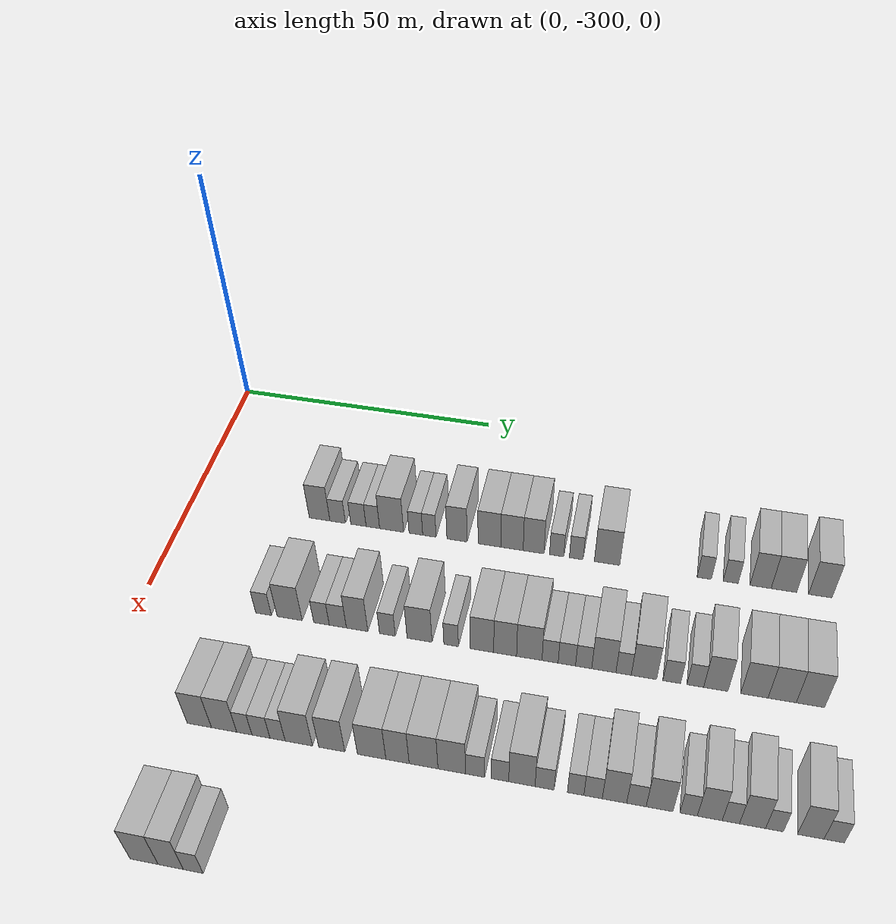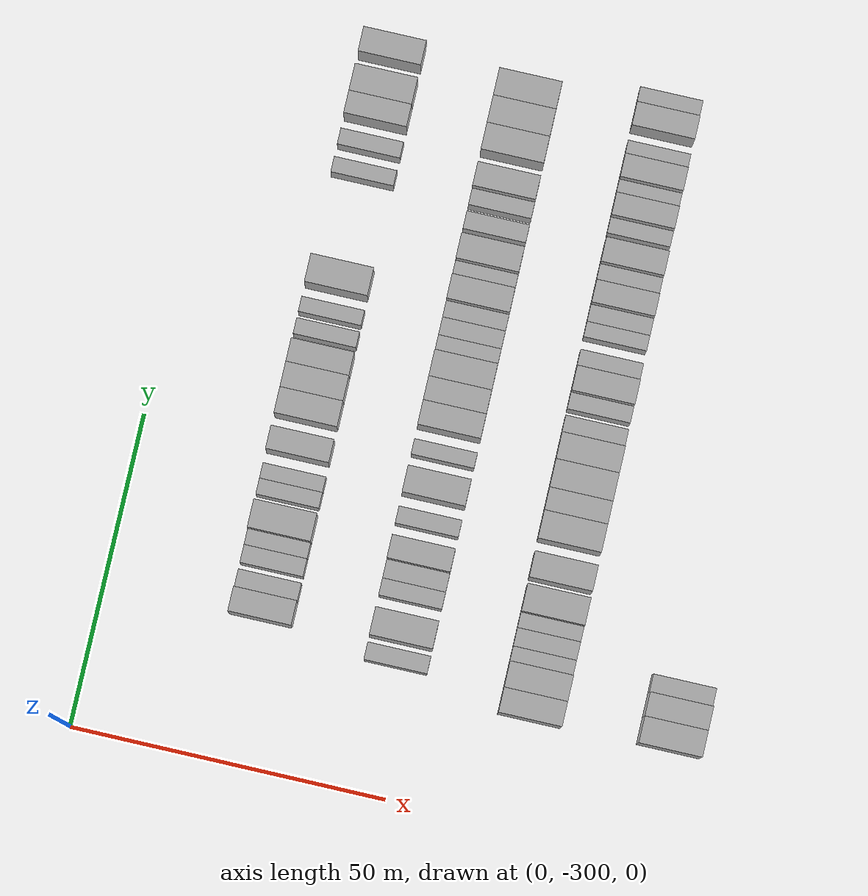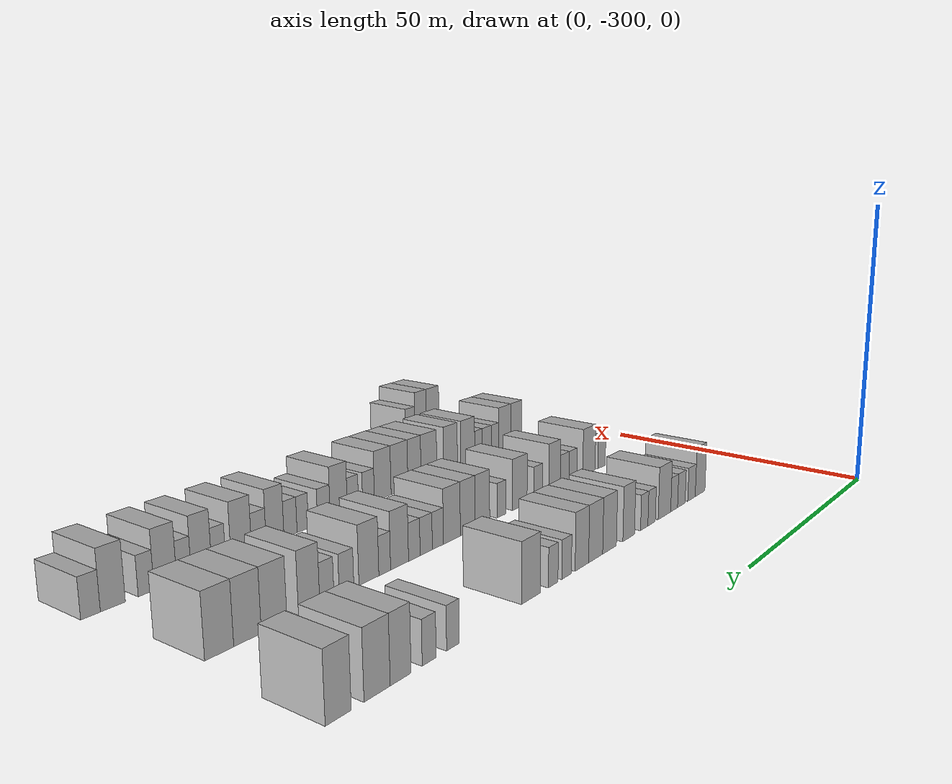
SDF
<sdf version="1.6">
 <world name="default">
  <model name="building_27">
   <static>1</static>
   <pose>25.0000 -275.4623 0 0.000000 0.000000 0.000000</pose>
   <link name="link">
    <pose>0 0 4.50 0 0 0</pose>
    <collision name="collision"><geometry><box><size>10.0000 3.9105 9.0000</size></box></geometry></collision>
    <visual name="visual">
     <cast_shadows>0</cast_shadows>
     <geometry><box><size>10.0000 3.9105 9.0000</size></box></geometry>
     <material>
      <script>
       <uri>model://HANNAS_wall/materials/scripts</uri>
       <uri>model://HANNAS_wall/materials/textures</uri>
       <name>vrc/HANNAS_wall</name>
      </script>
     </material>
    </visual>
   </link>
  </model>
  <model name="building_28">
   <static>1</static>
   <pose>25.0000 -272.0385 0 0.000000 0.000000 0.000000</pose>
   <link name="link">
    <pose>0 0 3.00 0 0 0</pose>
    <collision name="collision"><geometry><box><size>10.0000 2.9372 6.0000</size></box></geometry></collision>
    <visual name="visual">
     <cast_shadows>0</cast_shadows>
     <geometry><box><size>10.0000 2.9372 6.0000</size></box></geometry>
     <material>
      <script>
       <uri>model://HANNAS_wall/materials/scripts</uri>
       <uri>model://HANNAS_wall/materials/textures</uri>
       <name>vrc/HANNAS_wall</name>
      </script>
     </material>
    </visual>
   </link>
  </model>
  <model name="building_29">
   <static>1</static>
   <pose>25.0000 -268.1375 0 0.000000 0.000000 0.000000</pose>
   <link name="link">
    <pose>0 0 3.00 0 0 0</pose>
    <collision name="collision"><geometry><box><size>10.0000 2.8648 6.0000</size></box></geometry></collision>
    <visual name="visual">
     <cast_shadows>0</cast_shadows>
     <geometry><box><size>10.0000 2.8648 6.0000</size></box></geometry>
     <material>
      <script>
       <uri>model://HANNAS_wall/materials/scripts</uri>
       <uri>model://HANNAS_wall/materials/textures</uri>
       <name>vrc/HANNAS_wall</name>
      </script>
     </material>
    </visual>
   </link>
  </model>
  <model name="building_30">
   <static>1</static>
   <pose>25.0000 -265.4412 0 0.000000 0.000000 0.000000</pose>
   <link name="link">
    <pose>0 0 3.00 0 0 0</pose>
    <collision name="collision"><geometry><box><size>10.0000 2.5277 6.0000</size></box></geometry></collision>
    <visual name="visual">
     <cast_shadows>0</cast_shadows>
     <geometry><box><size>10.0000 2.5277 6.0000</size></box></geometry>
     <material>
      <script>
       <uri>model://HANNAS_wall/materials/scripts</uri>
       <uri>model://HANNAS_wall/materials/textures</uri>
       <name>vrc/HANNAS_wall</name>
      </script>
     </material>
    </visual>
   </link>
  </model>
  <model name="building_31">
   <static>1</static>
   <pose>25.0000 -261.9385 0 0.000000 0.000000 0.000000</pose>
   <link name="link">
    <pose>0 0 4.50 0 0 0</pose>
    <collision name="collision"><geometry><box><size>10.0000 4.4777 9.0000</size></box></geometry></collision>
    <visual name="visual">
     <cast_shadows>0</cast_shadows>
     <geometry><box><size>10.0000 4.4777 9.0000</size></box></geometry>
     <material>
      <script>
       <uri>model://HANNAS_wall/materials/scripts</uri>
       <uri>model://HANNAS_wall/materials/textures</uri>
       <name>vrc/HANNAS_wall</name>
      </script>
     </material>
    </visual>
   </link>
  </model>
  <model name="building_32">
   <static>1</static>
   <pose>25.0000 -257.4341 0 0.000000 0.000000 0.000000</pose>
   <link name="link">
    <pose>0 0 3.00 0 0 0</pose>
    <collision name="collision"><geometry><box><size>10.0000 2.5312 6.0000</size></box></geometry></collision>
    <visual name="visual">
     <cast_shadows>0</cast_shadows>
     <geometry><box><size>10.0000 2.5312 6.0000</size></box></geometry>
     <material>
      <script>
       <uri>model://HANNAS_wall/materials/scripts</uri>
       <uri>model://HANNAS_wall/materials/textures</uri>
       <name>vrc/HANNAS_wall</name>
      </script>
     </material>
    </visual>
   </link>
  </model>
  <model name="building_33">
   <static>1</static>
   <pose>25.0000 -254.9385 0 0.000000 0.000000 0.000000</pose>
   <link name="link">
    <pose>0 0 3.00 0 0 0</pose>
    <collision name="collision"><geometry><box><size>10.0000 2.4600 6.0000</size></box></geometry></collision>
    <visual name="visual">
     <cast_shadows>0</cast_shadows>
     <geometry><box><size>10.0000 2.4600 6.0000</size></box></geometry>
     <material>
      <script>
       <uri>model://HANNAS_wall/materials/scripts</uri>
       <uri>model://HANNAS_wall/materials/textures</uri>
       <name>vrc/HANNAS_wall</name>
      </script>
     </material>
    </visual>
   </link>
  </model>
  <model name="building_34">
   <static>1</static>
   <pose>25.0000 -249.8592 0 0.000000 0.000000 0.000000</pose>
   <link name="link">
    <pose>0 0 4.50 0 0 0</pose>
    <collision name="collision"><geometry><box><size>10.0000 3.6985 9.0000</size></box></geometry></collision>
    <visual name="visual">
     <cast_shadows>0</cast_shadows>
     <geometry><box><size>10.0000 3.6985 9.0000</size></box></geometry>
     <material>
      <script>
       <uri>model://HANNAS_wall/materials/scripts</uri>
       <uri>model://HANNAS_wall/materials/textures</uri>
       <name>vrc/HANNAS_wall</name>
      </script>
     </material>
    </visual>
   </link>
  </model>
  <model name="building_35">
   <static>1</static>
   <pose>25.0000 -243.9515 0 0.000000 0.000000 0.000000</pose>
   <link name="link">
    <pose>0 0 4.50 0 0 0</pose>
    <collision name="collision"><geometry><box><size>10.0000 4.1169 9.0000</size></box></geometry></collision>
    <visual name="visual">
     <cast_shadows>0</cast_shadows>
     <geometry><box><size>10.0000 4.1169 9.0000</size></box></geometry>
     <material>
      <script>
       <uri>model://HANNAS_wall/materials/scripts</uri>
       <uri>model://HANNAS_wall/materials/textures</uri>
       <name>vrc/HANNAS_wall</name>
      </script>
     </material>
    </visual>
   </link>
  </model>
  <model name="building_36">
   <static>1</static>
   <pose>25.0000 -239.8712 0 0.000000 0.000000 0.000000</pose>
   <link name="link">
    <pose>0 0 4.50 0 0 0</pose>
    <collision name="collision"><geometry><box><size>10.0000 4.0436 9.0000</size></box></geometry></collision>
    <visual name="visual">
     <cast_shadows>0</cast_shadows>
     <geometry><box><size>10.0000 4.0436 9.0000</size></box></geometry>
     <material>
      <script>
       <uri>model://HANNAS_wall/materials/scripts</uri>
       <uri>model://HANNAS_wall/materials/textures</uri>
       <name>vrc/HANNAS_wall</name>
      </script>
     </material>
    </visual>
   </link>
  </model>
  <model name="building_37">
   <static>1</static>
   <pose>25.0000 -235.9792 0 0.000000 0.000000 0.000000</pose>
   <link name="link">
    <pose>0 0 4.50 0 0 0</pose>
    <collision name="collision"><geometry><box><size>10.0000 3.7403 9.0000</size></box></geometry></collision>
    <visual name="visual">
     <cast_shadows>0</cast_shadows>
     <geometry><box><size>10.0000 3.7403 9.0000</size></box></geometry>
     <material>
      <script>
       <uri>model://HANNAS_wall/materials/scripts</uri>
       <uri>model://HANNAS_wall/materials/textures</uri>
       <name>vrc/HANNAS_wall</name>
      </script>
     </material>
    </visual>
   </link>
  </model>
  <model name="building_38">
   <static>1</static>
   <pose>25.0000 -231.8382 0 0.000000 0.000000 0.000000</pose>
   <link name="link">
    <pose>0 0 3.00 0 0 0</pose>
    <collision name="collision"><geometry><box><size>10.0000 2.5418 6.0000</size></box></geometry></collision>
    <visual name="visual">
     <cast_shadows>0</cast_shadows>
     <geometry><box><size>10.0000 2.5418 6.0000</size></box></geometry>
     <material>
      <script>
       <uri>model://HANNAS_wall/materials/scripts</uri>
       <uri>model://HANNAS_wall/materials/textures</uri>
       <name>vrc/HANNAS_wall</name>
      </script>
     </material>
    </visual>
   </link>
  </model>
  <model name="building_39">
   <static>1</static>
   <pose>25.0000 -228.3527 0 0.000000 0.000000 0.000000</pose>
   <link name="link">
    <pose>0 0 3.00 0 0 0</pose>
    <collision name="collision"><geometry><box><size>10.0000 2.4292 6.0000</size></box></geometry></collision>
    <visual name="visual">
     <cast_shadows>0</cast_shadows>
     <geometry><box><size>10.0000 2.4292 6.0000</size></box></geometry>
     <material>
      <script>
       <uri>model://HANNAS_wall/materials/scripts</uri>
       <uri>model://HANNAS_wall/materials/textures</uri>
       <name>vrc/HANNAS_wall</name>
      </script>
     </material>
    </visual>
   </link>
  </model>
  <model name="building_40">
   <static>1</static>
   <pose>25.0000 -222.8898 0 0.000000 0.000000 0.000000</pose>
   <link name="link">
    <pose>0 0 4.50 0 0 0</pose>
    <collision name="collision"><geometry><box><size>10.0000 4.4965 9.0000</size></box></geometry></collision>
    <visual name="visual">
     <cast_shadows>0</cast_shadows>
     <geometry><box><size>10.0000 4.4965 9.0000</size></box></geometry>
     <material>
      <script>
       <uri>model://HANNAS_wall/materials/scripts</uri>
       <uri>model://HANNAS_wall/materials/textures</uri>
       <name>vrc/HANNAS_wall</name>
      </script>
     </material>
    </visual>
   </link>
  </model>
  <model name="building_41">
   <static>1</static>
   <pose>25.0000 -205.9255 0 0.000000 0.000000 0.000000</pose>
   <link name="link">
    <pose>0 0 3.00 0 0 0</pose>
    <collision name="collision"><geometry><box><size>10.0000 2.4774 6.0000</size></box></geometry></collision>
    <visual name="visual">
     <cast_shadows>0</cast_shadows>
     <geometry><box><size>10.0000 2.4774 6.0000</size></box></geometry>
     <material>
      <script>
       <uri>model://HANNAS_wall/materials/scripts</uri>
       <uri>model://HANNAS_wall/materials/textures</uri>
       <name>vrc/HANNAS_wall</name>
      </script>
     </material>
    </visual>
   </link>
  </model>
  <model name="building_42">
   <static>1</static>
   <pose>25.0000 -201.3956 0 0.000000 0.000000 0.000000</pose>
   <link name="link">
    <pose>0 0 3.00 0 0 0</pose>
    <collision name="collision"><geometry><box><size>10.0000 2.5824 6.0000</size></box></geometry></collision>
    <visual name="visual">
     <cast_shadows>0</cast_shadows>
     <geometry><box><size>10.0000 2.5824 6.0000</size></box></geometry>
     <material>
      <script>
       <uri>model://HANNAS_wall/materials/scripts</uri>
       <uri>model://HANNAS_wall/materials/textures</uri>
       <name>vrc/HANNAS_wall</name>
      </script>
     </material>
    </visual>
   </link>
  </model>
  <model name="building_43">
   <static>1</static>
   <pose>25.0000 -196.2960 0 0.000000 0.000000 0.000000</pose>
   <link name="link">
    <pose>0 0 4.50 0 0 0</pose>
    <collision name="collision"><geometry><box><size>10.0000 3.6167 9.0000</size></box></geometry></collision>
    <visual name="visual">
     <cast_shadows>0</cast_shadows>
     <geometry><box><size>10.0000 3.6167 9.0000</size></box></geometry>
     <material>
      <script>
       <uri>model://HANNAS_wall/materials/scripts</uri>
       <uri>model://HANNAS_wall/materials/textures</uri>
       <name>vrc/HANNAS_wall</name>
      </script>
     </material>
    </visual>
   </link>
  </model>
  <model name="building_44">
   <static>1</static>
   <pose>25.0000 -192.3306 0 0.000000 0.000000 0.000000</pose>
   <link name="link">
    <pose>0 0 4.50 0 0 0</pose>
    <collision name="collision"><geometry><box><size>10.0000 4.3140 9.0000</size></box></geometry></collision>
    <visual name="visual">
     <cast_shadows>0</cast_shadows>
     <geometry><box><size>10.0000 4.3140 9.0000</size></box></geometry>
     <material>
      <script>
       <uri>model://HANNAS_wall/materials/scripts</uri>
       <uri>model://HANNAS_wall/materials/textures</uri>
       <name>vrc/HANNAS_wall</name>
      </script>
     </material>
    </visual>
   </link>
  </model>
  <model name="building_45">
   <static>1</static>
   <pose>25.0000 -186.2019 0 0.000000 0.000000 0.000000</pose>
   <link name="link">
    <pose>0 0 4.50 0 0 0</pose>
    <collision name="collision"><geometry><box><size>10.0000 3.9435 9.0000</size></box></geometry></collision>
    <visual name="visual">
     <cast_shadows>0</cast_shadows>
     <geometry><box><size>10.0000 3.9435 9.0000</size></box></geometry>
     <material>
      <script>
       <uri>model://HANNAS_wall/materials/scripts</uri>
       <uri>model://HANNAS_wall/materials/textures</uri>
       <name>vrc/HANNAS_wall</name>
      </script>
     </material>
    </visual>
   </link>
  </model>
  <model name="building_215">
   <static>1</static>
   <pose>47.0000 -278.4926 0 0.000000 0.000000 0.000000</pose>
   <link name="link">
    <pose>0 0 3.00 0 0 0</pose>
    <collision name="collision"><geometry><box><size>10.0000 2.7817 6.0000</size></box></geometry></collision>
    <visual name="visual">
     <cast_shadows>0</cast_shadows>
     <geometry><box><size>10.0000 2.7817 6.0000</size></box></geometry>
     <material>
      <script>
       <uri>model://HANNAS_wall/materials/scripts</uri>
       <uri>model://HANNAS_wall/materials/textures</uri>
       <name>vrc/HANNAS_wall</name>
      </script>
     </material>
    </visual>
   </link>
  </model>
  <model name="building_216">
   <static>1</static>
   <pose>47.0000 -273.8926 0 0.000000 0.000000 0.000000</pose>
   <link name="link">
    <pose>0 0 4.50 0 0 0</pose>
    <collision name="collision"><geometry><box><size>10.0000 4.4183 9.0000</size></box></geometry></collision>
    <visual name="visual">
     <cast_shadows>0</cast_shadows>
     <geometry><box><size>10.0000 4.4183 9.0000</size></box></geometry>
     <material>
      <script>
       <uri>model://HANNAS_wall/materials/scripts</uri>
       <uri>model://HANNAS_wall/materials/textures</uri>
       <name>vrc/HANNAS_wall</name>
      </script>
     </material>
    </visual>
   </link>
  </model>
  <model name="building_217">
   <static>1</static>
   <pose>47.0000 -268.3215 0 0.000000 0.000000 0.000000</pose>
   <link name="link">
    <pose>0 0 3.00 0 0 0</pose>
    <collision name="collision"><geometry><box><size>10.0000 2.7239 6.0000</size></box></geometry></collision>
    <visual name="visual">
     <cast_shadows>0</cast_shadows>
     <geometry><box><size>10.0000 2.7239 6.0000</size></box></geometry>
     <material>
      <script>
       <uri>model://HANNAS_wall/materials/scripts</uri>
       <uri>model://HANNAS_wall/materials/textures</uri>
       <name>vrc/HANNAS_wall</name>
      </script>
     </material>
    </visual>
   </link>
  </model>
  <model name="building_218">
   <static>1</static>
   <pose>47.0000 -265.4670 0 0.000000 0.000000 0.000000</pose>
   <link name="link">
    <pose>0 0 3.00 0 0 0</pose>
    <collision name="collision"><geometry><box><size>10.0000 2.9851 6.0000</size></box></geometry></collision>
    <visual name="visual">
     <cast_shadows>0</cast_shadows>
     <geometry><box><size>10.0000 2.9851 6.0000</size></box></geometry>
     <material>
      <script>
       <uri>model://HANNAS_wall/materials/scripts</uri>
       <uri>model://HANNAS_wall/materials/textures</uri>
       <name>vrc/HANNAS_wall</name>
      </script>
     </material>
    </visual>
   </link>
  </model>
  <model name="building_219">
   <static>1</static>
   <pose>47.0000 -262.1208 0 0.000000 0.000000 0.000000</pose>
   <link name="link">
    <pose>0 0 4.50 0 0 0</pose>
    <collision name="collision"><geometry><box><size>10.0000 3.7074 9.0000</size></box></geometry></collision>
    <visual name="visual">
     <cast_shadows>0</cast_shadows>
     <geometry><box><size>10.0000 3.7074 9.0000</size></box></geometry>
     <material>
      <script>
       <uri>model://HANNAS_wall/materials/scripts</uri>
       <uri>model://HANNAS_wall/materials/textures</uri>
       <name>vrc/HANNAS_wall</name>
      </script>
     </material>
    </visual>
   </link>
  </model>
  <model name="building_220">
   <static>1</static>
   <pose>47.0000 -256.9065 0 0.000000 0.000000 0.000000</pose>
   <link name="link">
    <pose>0 0 3.00 0 0 0</pose>
    <collision name="collision"><geometry><box><size>10.0000 2.7212 6.0000</size></box></geometry></collision>
    <visual name="visual">
     <cast_shadows>0</cast_shadows>
     <geometry><box><size>10.0000 2.7212 6.0000</size></box></geometry>
     <material>
      <script>
       <uri>model://HANNAS_wall/materials/scripts</uri>
       <uri>model://HANNAS_wall/materials/textures</uri>
       <name>vrc/HANNAS_wall</name>
      </script>
     </material>
    </visual>
   </link>
  </model>
  <model name="building_221">
   <static>1</static>
   <pose>47.0000 -251.4196 0 0.000000 0.000000 0.000000</pose>
   <link name="link">
    <pose>0 0 4.50 0 0 0</pose>
    <collision name="collision"><geometry><box><size>10.0000 4.2527 9.0000</size></box></geometry></collision>
    <visual name="visual">
     <cast_shadows>0</cast_shadows>
     <geometry><box><size>10.0000 4.2527 9.0000</size></box></geometry>
     <material>
      <script>
       <uri>model://HANNAS_wall/materials/scripts</uri>
       <uri>model://HANNAS_wall/materials/textures</uri>
       <name>vrc/HANNAS_wall</name>
      </script>
     </material>
    </visual>
   </link>
  </model>
  <model name="building_222">
   <static>1</static>
   <pose>47.0000 -246.0623 0 0.000000 0.000000 0.000000</pose>
   <link name="link">
    <pose>0 0 3.00 0 0 0</pose>
    <collision name="collision"><geometry><box><size>10.0000 2.4617 6.0000</size></box></geometry></collision>
    <visual name="visual">
     <cast_shadows>0</cast_shadows>
     <geometry><box><size>10.0000 2.4617 6.0000</size></box></geometry>
     <material>
      <script>
       <uri>model://HANNAS_wall/materials/scripts</uri>
       <uri>model://HANNAS_wall/materials/textures</uri>
       <name>vrc/HANNAS_wall</name>
      </script>
     </material>
    </visual>
   </link>
  </model>
  <model name="building_223">
   <static>1</static>
   <pose>47.0000 -240.8691 0 0.000000 0.000000 0.000000</pose>
   <link name="link">
    <pose>0 0 4.50 0 0 0</pose>
    <collision name="collision"><geometry><box><size>10.0000 3.9248 9.0000</size></box></geometry></collision>
    <visual name="visual">
     <cast_shadows>0</cast_shadows>
     <geometry><box><size>10.0000 3.9248 9.0000</size></box></geometry>
     <material>
      <script>
       <uri>model://HANNAS_wall/materials/scripts</uri>
       <uri>model://HANNAS_wall/materials/textures</uri>
       <name>vrc/HANNAS_wall</name>
      </script>
     </material>
    </visual>
   </link>
  </model>
  <model name="building_224">
   <static>1</static>
   <pose>47.0000 -237.0085 0 0.000000 0.000000 0.000000</pose>
   <link name="link">
    <pose>0 0 4.50 0 0 0</pose>
    <collision name="collision"><geometry><box><size>10.0000 3.7963 9.0000</size></box></geometry></collision>
    <visual name="visual">
     <cast_shadows>0</cast_shadows>
     <geometry><box><size>10.0000 3.7963 9.0000</size></box></geometry>
     <material>
      <script>
       <uri>model://HANNAS_wall/materials/scripts</uri>
       <uri>model://HANNAS_wall/materials/textures</uri>
       <name>vrc/HANNAS_wall</name>
      </script>
     </material>
    </visual>
   </link>
  </model>
  <model name="building_225">
   <static>1</static>
   <pose>47.0000 -233.0069 0 0.000000 0.000000 0.000000</pose>
   <link name="link">
    <pose>0 0 4.50 0 0 0</pose>
    <collision name="collision"><geometry><box><size>10.0000 4.2069 9.0000</size></box></geometry></collision>
    <visual name="visual">
     <cast_shadows>0</cast_shadows>
     <geometry><box><size>10.0000 4.2069 9.0000</size></box></geometry>
     <material>
      <script>
       <uri>model://HANNAS_wall/materials/scripts</uri>
       <uri>model://HANNAS_wall/materials/textures</uri>
       <name>vrc/HANNAS_wall</name>
      </script>
     </material>
    </visual>
   </link>
  </model>
  <model name="building_226">
   <static>1</static>
   <pose>47.0000 -229.5729 0 0.000000 0.000000 0.000000</pose>
   <link name="link">
    <pose>0 0 3.00 0 0 0</pose>
    <collision name="collision"><geometry><box><size>10.0000 2.6611 6.0000</size></box></geometry></collision>
    <visual name="visual">
     <cast_shadows>0</cast_shadows>
     <geometry><box><size>10.0000 2.6611 6.0000</size></box></geometry>
     <material>
      <script>
       <uri>model://HANNAS_wall/materials/scripts</uri>
       <uri>model://HANNAS_wall/materials/textures</uri>
       <name>vrc/HANNAS_wall</name>
      </script>
     </material>
    </visual>
   </link>
  </model>
  <model name="building_227">
   <static>1</static>
   <pose>47.0000 -226.8164 0 0.000000 0.000000 0.000000</pose>
   <link name="link">
    <pose>0 0 3.00 0 0 0</pose>
    <collision name="collision"><geometry><box><size>10.0000 2.8519 6.0000</size></box></geometry></collision>
    <visual name="visual">
     <cast_shadows>0</cast_shadows>
     <geometry><box><size>10.0000 2.8519 6.0000</size></box></geometry>
     <material>
      <script>
       <uri>model://HANNAS_wall/materials/scripts</uri>
       <uri>model://HANNAS_wall/materials/textures</uri>
       <name>vrc/HANNAS_wall</name>
      </script>
     </material>
    </visual>
   </link>
  </model>
  <model name="building_228">
   <static>1</static>
   <pose>47.0000 -224.0728 0 0.000000 0.000000 0.000000</pose>
   <link name="link">
    <pose>0 0 3.00 0 0 0</pose>
    <collision name="collision"><geometry><box><size>10.0000 2.6355 6.0000</size></box></geometry></collision>
    <visual name="visual">
     <cast_shadows>0</cast_shadows>
     <geometry><box><size>10.0000 2.6355 6.0000</size></box></geometry>
     <material>
      <script>
       <uri>model://HANNAS_wall/materials/scripts</uri>
       <uri>model://HANNAS_wall/materials/textures</uri>
       <name>vrc/HANNAS_wall</name>
      </script>
     </material>
    </visual>
   </link>
  </model>
  <model name="building_229">
   <static>1</static>
   <pose>47.0000 -220.7847 0 0.000000 0.000000 0.000000</pose>
   <link name="link">
    <pose>0 0 4.50 0 0 0</pose>
    <collision name="collision"><geometry><box><size>10.0000 3.9408 9.0000</size></box></geometry></collision>
    <visual name="visual">
     <cast_shadows>0</cast_shadows>
     <geometry><box><size>10.0000 3.9408 9.0000</size></box></geometry>
     <material>
      <script>
       <uri>model://HANNAS_wall/materials/scripts</uri>
       <uri>model://HANNAS_wall/materials/textures</uri>
       <name>vrc/HANNAS_wall</name>
      </script>
     </material>
    </visual>
   </link>
  </model>
  <model name="building_230">
   <static>1</static>
   <pose>47.0000 -217.5699 0 0.000000 0.000000 0.000000</pose>
   <link name="link">
    <pose>0 0 3.00 0 0 0</pose>
    <collision name="collision"><geometry><box><size>10.0000 2.4888 6.0000</size></box></geometry></collision>
    <visual name="visual">
     <cast_shadows>0</cast_shadows>
     <geometry><box><size>10.0000 2.4888 6.0000</size></box></geometry>
     <material>
      <script>
       <uri>model://HANNAS_wall/materials/scripts</uri>
       <uri>model://HANNAS_wall/materials/textures</uri>
       <name>vrc/HANNAS_wall</name>
      </script>
     </material>
    </visual>
   </link>
  </model>
  <model name="building_231">
   <static>1</static>
   <pose>47.0000 -214.2834 0 0.000000 0.000000 0.000000</pose>
   <link name="link">
    <pose>0 0 4.50 0 0 0</pose>
    <collision name="collision"><geometry><box><size>10.0000 4.0842 9.0000</size></box></geometry></collision>
    <visual name="visual">
     <cast_shadows>0</cast_shadows>
     <geometry><box><size>10.0000 4.0842 9.0000</size></box></geometry>
     <material>
      <script>
       <uri>model://HANNAS_wall/materials/scripts</uri>
       <uri>model://HANNAS_wall/materials/textures</uri>
       <name>vrc/HANNAS_wall</name>
      </script>
     </material>
    </visual>
   </link>
  </model>
  <model name="building_232">
   <static>1</static>
   <pose>47.0000 -209.8120 0 0.000000 0.000000 0.000000</pose>
   <link name="link">
    <pose>0 0 3.00 0 0 0</pose>
    <collision name="collision"><geometry><box><size>10.0000 2.8585 6.0000</size></box></geometry></collision>
    <visual name="visual">
     <cast_shadows>0</cast_shadows>
     <geometry><box><size>10.0000 2.8585 6.0000</size></box></geometry>
     <material>
      <script>
       <uri>model://HANNAS_wall/materials/scripts</uri>
       <uri>model://HANNAS_wall/materials/textures</uri>
       <name>vrc/HANNAS_wall</name>
      </script>
     </material>
    </visual>
   </link>
  </model>
  <model name="building_233">
   <static>1</static>
   <pose>47.0000 -206.0564 0 0.000000 0.000000 0.000000</pose>
   <link name="link">
    <pose>0 0 3.00 0 0 0</pose>
    <collision name="collision"><geometry><box><size>10.0000 2.6527 6.0000</size></box></geometry></collision>
    <visual name="visual">
     <cast_shadows>0</cast_shadows>
     <geometry><box><size>10.0000 2.6527 6.0000</size></box></geometry>
     <material>
      <script>
       <uri>model://HANNAS_wall/materials/scripts</uri>
       <uri>model://HANNAS_wall/materials/textures</uri>
       <name>vrc/HANNAS_wall</name>
      </script>
     </material>
    </visual>
   </link>
  </model>
  <model name="building_234">
   <static>1</static>
   <pose>47.0000 -202.8094 0 0.000000 0.000000 0.000000</pose>
   <link name="link">
    <pose>0 0 4.50 0 0 0</pose>
    <collision name="collision"><geometry><box><size>10.0000 3.8414 9.0000</size></box></geometry></collision>
    <visual name="visual">
     <cast_shadows>0</cast_shadows>
     <geometry><box><size>10.0000 3.8414 9.0000</size></box></geometry>
     <material>
      <script>
       <uri>model://HANNAS_wall/materials/scripts</uri>
       <uri>model://HANNAS_wall/materials/textures</uri>
       <name>vrc/HANNAS_wall</name>
      </script>
     </material>
    </visual>
   </link>
  </model>
  <model name="building_235">
   <static>1</static>
   <pose>47.0000 -196.7405 0 0.000000 0.000000 0.000000</pose>
   <link name="link">
    <pose>0 0 4.50 0 0 0</pose>
    <collision name="collision"><geometry><box><size>10.0000 4.2963 9.0000</size></box></geometry></collision>
    <visual name="visual">
     <cast_shadows>0</cast_shadows>
     <geometry><box><size>10.0000 4.2963 9.0000</size></box></geometry>
     <material>
      <script>
       <uri>model://HANNAS_wall/materials/scripts</uri>
       <uri>model://HANNAS_wall/materials/textures</uri>
       <name>vrc/HANNAS_wall</name>
      </script>
     </material>
    </visual>
   </link>
  </model>
  <model name="building_236">
   <static>1</static>
   <pose>47.0000 -192.3937 0 0.000000 0.000000 0.000000</pose>
   <link name="link">
    <pose>0 0 4.50 0 0 0</pose>
    <collision name="collision"><geometry><box><size>10.0000 4.3974 9.0000</size></box></geometry></collision>
    <visual name="visual">
     <cast_shadows>0</cast_shadows>
     <geometry><box><size>10.0000 4.3974 9.0000</size></box></geometry>
     <material>
      <script>
       <uri>model://HANNAS_wall/materials/scripts</uri>
       <uri>model://HANNAS_wall/materials/textures</uri>
       <name>vrc/HANNAS_wall</name>
      </script>
     </material>
    </visual>
   </link>
  </model>
  <model name="building_237">
   <static>1</static>
   <pose>47.0000 -187.9994 0 0.000000 0.000000 0.000000</pose>
   <link name="link">
    <pose>0 0 4.50 0 0 0</pose>
    <collision name="collision"><geometry><box><size>10.0000 4.3911 9.0000</size></box></geometry></collision>
    <visual name="visual">
     <cast_shadows>0</cast_shadows>
     <geometry><box><size>10.0000 4.3911 9.0000</size></box></geometry>
     <material>
      <script>
       <uri>model://HANNAS_wall/materials/scripts</uri>
       <uri>model://HANNAS_wall/materials/textures</uri>
       <name>vrc/HANNAS_wall</name>
      </script>
     </material>
    </visual>
   </link>
  </model>
  <model name="building_409">
   <static>1</static>
   <pose>69.0000 -281.2976 0 0.000000 0.000000 0.000000</pose>
   <link name="link">
    <pose>0 0 4.50 0 0 0</pose>
    <collision name="collision"><geometry><box><size>10.0000 3.9731 9.0000</size></box></geometry></collision>
    <visual name="visual">
     <cast_shadows>0</cast_shadows>
     <geometry><box><size>10.0000 3.9731 9.0000</size></box></geometry>
     <material>
      <script>
       <uri>model://HANNAS_wall/materials/scripts</uri>
       <uri>model://HANNAS_wall/materials/textures</uri>
       <name>vrc/HANNAS_wall</name>
      </script>
     </material>
    </visual>
   </link>
  </model>
  <model name="building_410">
   <static>1</static>
   <pose>69.0000 -277.2460 0 0.000000 0.000000 0.000000</pose>
   <link name="link">
    <pose>0 0 4.50 0 0 0</pose>
    <collision name="collision"><geometry><box><size>10.0000 4.1300 9.0000</size></box></geometry></collision>
    <visual name="visual">
     <cast_shadows>0</cast_shadows>
     <geometry><box><size>10.0000 4.1300 9.0000</size></box></geometry>
     <material>
      <script>
       <uri>model://HANNAS_wall/materials/scripts</uri>
       <uri>model://HANNAS_wall/materials/textures</uri>
       <name>vrc/HANNAS_wall</name>
      </script>
     </material>
    </visual>
   </link>
  </model>
  <model name="building_411">
   <static>1</static>
   <pose>69.0000 -273.9381 0 0.000000 0.000000 0.000000</pose>
   <link name="link">
    <pose>0 0 3.00 0 0 0</pose>
    <collision name="collision"><geometry><box><size>10.0000 2.4857 6.0000</size></box></geometry></collision>
    <visual name="visual">
     <cast_shadows>0</cast_shadows>
     <geometry><box><size>10.0000 2.4857 6.0000</size></box></geometry>
     <material>
      <script>
       <uri>model://HANNAS_wall/materials/scripts</uri>
       <uri>model://HANNAS_wall/materials/textures</uri>
       <name>vrc/HANNAS_wall</name>
      </script>
     </material>
    </visual>
   </link>
  </model>
  <model name="building_412">
   <static>1</static>
   <pose>69.0000 -271.2358 0 0.000000 0.000000 0.000000</pose>
   <link name="link">
    <pose>0 0 3.00 0 0 0</pose>
    <collision name="collision"><geometry><box><size>10.0000 2.9191 6.0000</size></box></geometry></collision>
    <visual name="visual">
     <cast_shadows>0</cast_shadows>
     <geometry><box><size>10.0000 2.9191 6.0000</size></box></geometry>
     <material>
      <script>
       <uri>model://HANNAS_wall/materials/scripts</uri>
       <uri>model://HANNAS_wall/materials/textures</uri>
       <name>vrc/HANNAS_wall</name>
      </script>
     </material>
    </visual>
   </link>
  </model>
  <model name="building_413">
   <static>1</static>
   <pose>69.0000 -268.5540 0 0.000000 0.000000 0.000000</pose>
   <link name="link">
    <pose>0 0 3.00 0 0 0</pose>
    <collision name="collision"><geometry><box><size>10.0000 2.4444 6.0000</size></box></geometry></collision>
    <visual name="visual">
     <cast_shadows>0</cast_shadows>
     <geometry><box><size>10.0000 2.4444 6.0000</size></box></geometry>
     <material>
      <script>
       <uri>model://HANNAS_wall/materials/scripts</uri>
       <uri>model://HANNAS_wall/materials/textures</uri>
       <name>vrc/HANNAS_wall</name>
      </script>
     </material>
    </visual>
   </link>
  </model>
  <model name="building_414">
   <static>1</static>
   <pose>69.0000 -265.1421 0 0.000000 0.000000 0.000000</pose>
   <link name="link">
    <pose>0 0 4.50 0 0 0</pose>
    <collision name="collision"><geometry><box><size>10.0000 4.3794 9.0000</size></box></geometry></collision>
    <visual name="visual">
     <cast_shadows>0</cast_shadows>
     <geometry><box><size>10.0000 4.3794 9.0000</size></box></geometry>
     <material>
      <script>
       <uri>model://HANNAS_wall/materials/scripts</uri>
       <uri>model://HANNAS_wall/materials/textures</uri>
       <name>vrc/HANNAS_wall</name>
      </script>
     </material>
    </visual>
   </link>
  </model>
  <model name="building_415">
   <static>1</static>
   <pose>69.0000 -259.8848 0 0.000000 0.000000 0.000000</pose>
   <link name="link">
    <pose>0 0 4.50 0 0 0</pose>
    <collision name="collision"><geometry><box><size>10.0000 4.1351 9.0000</size></box></geometry></collision>
    <visual name="visual">
     <cast_shadows>0</cast_shadows>
     <geometry><box><size>10.0000 4.1351 9.0000</size></box></geometry>
     <material>
      <script>
       <uri>model://HANNAS_wall/materials/scripts</uri>
       <uri>model://HANNAS_wall/materials/textures</uri>
       <name>vrc/HANNAS_wall</name>
      </script>
     </material>
    </visual>
   </link>
  </model>
  <model name="building_416">
   <static>1</static>
   <pose>69.0000 -253.5742 0 0.000000 0.000000 0.000000</pose>
   <link name="link">
    <pose>0 0 4.50 0 0 0</pose>
    <collision name="collision"><geometry><box><size>10.0000 4.4861 9.0000</size></box></geometry></collision>
    <visual name="visual">
     <cast_shadows>0</cast_shadows>
     <geometry><box><size>10.0000 4.4861 9.0000</size></box></geometry>
     <material>
      <script>
       <uri>model://HANNAS_wall/materials/scripts</uri>
       <uri>model://HANNAS_wall/materials/textures</uri>
       <name>vrc/HANNAS_wall</name>
      </script>
     </material>
    </visual>
   </link>
  </model>
  <model name="building_417">
   <static>1</static>
   <pose>69.0000 -249.5169 0 0.000000 0.000000 0.000000</pose>
   <link name="link">
    <pose>0 0 4.50 0 0 0</pose>
    <collision name="collision"><geometry><box><size>10.0000 3.6284 9.0000</size></box></geometry></collision>
    <visual name="visual">
     <cast_shadows>0</cast_shadows>
     <geometry><box><size>10.0000 3.6284 9.0000</size></box></geometry>
     <material>
      <script>
       <uri>model://HANNAS_wall/materials/scripts</uri>
       <uri>model://HANNAS_wall/materials/textures</uri>
       <name>vrc/HANNAS_wall</name>
      </script>
     </material>
    </visual>
   </link>
  </model>
  <model name="building_418">
   <static>1</static>
   <pose>69.0000 -245.4600 0 0.000000 0.000000 0.000000</pose>
   <link name="link">
    <pose>0 0 4.50 0 0 0</pose>
    <collision name="collision"><geometry><box><size>10.0000 4.4855 9.0000</size></box></geometry></collision>
    <visual name="visual">
     <cast_shadows>0</cast_shadows>
     <geometry><box><size>10.0000 4.4855 9.0000</size></box></geometry>
     <material>
      <script>
       <uri>model://HANNAS_wall/materials/scripts</uri>
       <uri>model://HANNAS_wall/materials/textures</uri>
       <name>vrc/HANNAS_wall</name>
      </script>
     </material>
    </visual>
   </link>
  </model>
  <model name="building_419">
   <static>1</static>
   <pose>69.0000 -241.0845 0 0.000000 0.000000 0.000000</pose>
   <link name="link">
    <pose>0 0 4.50 0 0 0</pose>
    <collision name="collision"><geometry><box><size>10.0000 4.2654 9.0000</size></box></geometry></collision>
    <visual name="visual">
     <cast_shadows>0</cast_shadows>
     <geometry><box><size>10.0000 4.2654 9.0000</size></box></geometry>
     <material>
      <script>
       <uri>model://HANNAS_wall/materials/scripts</uri>
       <uri>model://HANNAS_wall/materials/textures</uri>
       <name>vrc/HANNAS_wall</name>
      </script>
     </material>
    </visual>
   </link>
  </model>
  <model name="building_420">
   <static>1</static>
   <pose>69.0000 -237.4950 0 0.000000 0.000000 0.000000</pose>
   <link name="link">
    <pose>0 0 3.00 0 0 0</pose>
    <collision name="collision"><geometry><box><size>10.0000 2.9137 6.0000</size></box></geometry></collision>
    <visual name="visual">
     <cast_shadows>0</cast_shadows>
     <geometry><box><size>10.0000 2.9137 6.0000</size></box></geometry>
     <material>
      <script>
       <uri>model://HANNAS_wall/materials/scripts</uri>
       <uri>model://HANNAS_wall/materials/textures</uri>
       <name>vrc/HANNAS_wall</name>
      </script>
     </material>
    </visual>
   </link>
  </model>
  <model name="building_421">
   <static>1</static>
   <pose>69.0000 -233.7022 0 0.000000 0.000000 0.000000</pose>
   <link name="link">
    <pose>0 0 3.00 0 0 0</pose>
    <collision name="collision"><geometry><box><size>10.0000 2.6718 6.0000</size></box></geometry></collision>
    <visual name="visual">
     <cast_shadows>0</cast_shadows>
     <geometry><box><size>10.0000 2.6718 6.0000</size></box></geometry>
     <material>
      <script>
       <uri>model://HANNAS_wall/materials/scripts</uri>
       <uri>model://HANNAS_wall/materials/textures</uri>
       <name>vrc/HANNAS_wall</name>
      </script>
     </material>
    </visual>
   </link>
  </model>
  <model name="building_422">
   <static>1</static>
   <pose>69.0000 -230.3720 0 0.000000 0.000000 0.000000</pose>
   <link name="link">
    <pose>0 0 4.50 0 0 0</pose>
    <collision name="collision"><geometry><box><size>10.0000 3.9885 9.0000</size></box></geometry></collision>
    <visual name="visual">
     <cast_shadows>0</cast_shadows>
     <geometry><box><size>10.0000 3.9885 9.0000</size></box></geometry>
     <material>
      <script>
       <uri>model://HANNAS_wall/materials/scripts</uri>
       <uri>model://HANNAS_wall/materials/textures</uri>
       <name>vrc/HANNAS_wall</name>
      </script>
     </material>
    </visual>
   </link>
  </model>
  <model name="building_423">
   <static>1</static>
   <pose>69.0000 -226.9498 0 0.000000 0.000000 0.000000</pose>
   <link name="link">
    <pose>0 0 3.00 0 0 0</pose>
    <collision name="collision"><geometry><box><size>10.0000 2.8560 6.0000</size></box></geometry></collision>
    <visual name="visual">
     <cast_shadows>0</cast_shadows>
     <geometry><box><size>10.0000 2.8560 6.0000</size></box></geometry>
     <material>
      <script>
       <uri>model://HANNAS_wall/materials/scripts</uri>
       <uri>model://HANNAS_wall/materials/textures</uri>
       <name>vrc/HANNAS_wall</name>
      </script>
     </material>
    </visual>
   </link>
  </model>
  <model name="building_424">
   <static>1</static>
   <pose>69.0000 -222.2899 0 0.000000 0.000000 0.000000</pose>
   <link name="link">
    <pose>0 0 3.00 0 0 0</pose>
    <collision name="collision"><geometry><box><size>10.0000 2.4637 6.0000</size></box></geometry></collision>
    <visual name="visual">
     <cast_shadows>0</cast_shadows>
     <geometry><box><size>10.0000 2.4637 6.0000</size></box></geometry>
     <material>
      <script>
       <uri>model://HANNAS_wall/materials/scripts</uri>
       <uri>model://HANNAS_wall/materials/textures</uri>
       <name>vrc/HANNAS_wall</name>
      </script>
     </material>
    </visual>
   </link>
  </model>
  <model name="building_425">
   <static>1</static>
   <pose>69.0000 -219.6883 0 0.000000 0.000000 0.000000</pose>
   <link name="link">
    <pose>0 0 3.00 0 0 0</pose>
    <collision name="collision"><geometry><box><size>10.0000 2.7395 6.0000</size></box></geometry></collision>
    <visual name="visual">
     <cast_shadows>0</cast_shadows>
     <geometry><box><size>10.0000 2.7395 6.0000</size></box></geometry>
     <material>
      <script>
       <uri>model://HANNAS_wall/materials/scripts</uri>
       <uri>model://HANNAS_wall/materials/textures</uri>
       <name>vrc/HANNAS_wall</name>
      </script>
     </material>
    </visual>
   </link>
  </model>
  <model name="building_426">
   <static>1</static>
   <pose>69.0000 -216.5078 0 0.000000 0.000000 0.000000</pose>
   <link name="link">
    <pose>0 0 4.50 0 0 0</pose>
    <collision name="collision"><geometry><box><size>10.0000 3.6214 9.0000</size></box></geometry></collision>
    <visual name="visual">
     <cast_shadows>0</cast_shadows>
     <geometry><box><size>10.0000 3.6214 9.0000</size></box></geometry>
     <material>
      <script>
       <uri>model://HANNAS_wall/materials/scripts</uri>
       <uri>model://HANNAS_wall/materials/textures</uri>
       <name>vrc/HANNAS_wall</name>
      </script>
     </material>
    </visual>
   </link>
  </model>
  <model name="building_427">
   <static>1</static>
   <pose>69.0000 -213.2583 0 0.000000 0.000000 0.000000</pose>
   <link name="link">
    <pose>0 0 3.00 0 0 0</pose>
    <collision name="collision"><geometry><box><size>10.0000 2.8775 6.0000</size></box></geometry></collision>
    <visual name="visual">
     <cast_shadows>0</cast_shadows>
     <geometry><box><size>10.0000 2.8775 6.0000</size></box></geometry>
     <material>
      <script>
       <uri>model://HANNAS_wall/materials/scripts</uri>
       <uri>model://HANNAS_wall/materials/textures</uri>
       <name>vrc/HANNAS_wall</name>
      </script>
     </material>
    </visual>
   </link>
  </model>
  <model name="building_428">
   <static>1</static>
   <pose>69.0000 -209.8556 0 0.000000 0.000000 0.000000</pose>
   <link name="link">
    <pose>0 0 4.50 0 0 0</pose>
    <collision name="collision"><geometry><box><size>10.0000 3.9280 9.0000</size></box></geometry></collision>
    <visual name="visual">
     <cast_shadows>0</cast_shadows>
     <geometry><box><size>10.0000 3.9280 9.0000</size></box></geometry>
     <material>
      <script>
       <uri>model://HANNAS_wall/materials/scripts</uri>
       <uri>model://HANNAS_wall/materials/textures</uri>
       <name>vrc/HANNAS_wall</name>
      </script>
     </material>
    </visual>
   </link>
  </model>
  <model name="building_429">
   <static>1</static>
   <pose>69.0000 -205.6177 0 0.000000 0.000000 0.000000</pose>
   <link name="link">
    <pose>0 0 3.00 0 0 0</pose>
    <collision name="collision"><geometry><box><size>10.0000 2.5478 6.0000</size></box></geometry></collision>
    <visual name="visual">
     <cast_shadows>0</cast_shadows>
     <geometry><box><size>10.0000 2.5478 6.0000</size></box></geometry>
     <material>
      <script>
       <uri>model://HANNAS_wall/materials/scripts</uri>
       <uri>model://HANNAS_wall/materials/textures</uri>
       <name>vrc/HANNAS_wall</name>
      </script>
     </material>
    </visual>
   </link>
  </model>
  <model name="building_430">
   <static>1</static>
   <pose>69.0000 -202.5408 0 0.000000 0.000000 0.000000</pose>
   <link name="link">
    <pose>0 0 4.50 0 0 0</pose>
    <collision name="collision"><geometry><box><size>10.0000 3.6060 9.0000</size></box></geometry></collision>
    <visual name="visual">
     <cast_shadows>0</cast_shadows>
     <geometry><box><size>10.0000 3.6060 9.0000</size></box></geometry>
     <material>
      <script>
       <uri>model://HANNAS_wall/materials/scripts</uri>
       <uri>model://HANNAS_wall/materials/textures</uri>
       <name>vrc/HANNAS_wall</name>
      </script>
     </material>
    </visual>
   </link>
  </model>
  <model name="building_431">
   <static>1</static>
   <pose>69.0000 -199.4936 0 0.000000 0.000000 0.000000</pose>
   <link name="link">
    <pose>0 0 3.00 0 0 0</pose>
    <collision name="collision"><geometry><box><size>10.0000 2.4884 6.0000</size></box></geometry></collision>
    <visual name="visual">
     <cast_shadows>0</cast_shadows>
     <geometry><box><size>10.0000 2.4884 6.0000</size></box></geometry>
     <material>
      <script>
       <uri>model://HANNAS_wall/materials/scripts</uri>
       <uri>model://HANNAS_wall/materials/textures</uri>
       <name>vrc/HANNAS_wall</name>
      </script>
     </material>
    </visual>
   </link>
  </model>
  <model name="building_432">
   <static>1</static>
   <pose>69.0000 -196.3770 0 0.000000 0.000000 0.000000</pose>
   <link name="link">
    <pose>0 0 4.50 0 0 0</pose>
    <collision name="collision"><geometry><box><size>10.0000 3.7448 9.0000</size></box></geometry></collision>
    <visual name="visual">
     <cast_shadows>0</cast_shadows>
     <geometry><box><size>10.0000 3.7448 9.0000</size></box></geometry>
     <material>
      <script>
       <uri>model://HANNAS_wall/materials/scripts</uri>
       <uri>model://HANNAS_wall/materials/textures</uri>
       <name>vrc/HANNAS_wall</name>
      </script>
     </material>
    </visual>
   </link>
  </model>
  <model name="building_433">
   <static>1</static>
   <pose>69.0000 -193.2395 0 0.000000 0.000000 0.000000</pose>
   <link name="link">
    <pose>0 0 3.00 0 0 0</pose>
    <collision name="collision"><geometry><box><size>10.0000 2.5302 6.0000</size></box></geometry></collision>
    <visual name="visual">
     <cast_shadows>0</cast_shadows>
     <geometry><box><size>10.0000 2.5302 6.0000</size></box></geometry>
     <material>
      <script>
       <uri>model://HANNAS_wall/materials/scripts</uri>
       <uri>model://HANNAS_wall/materials/textures</uri>
       <name>vrc/HANNAS_wall</name>
      </script>
     </material>
    </visual>
   </link>
  </model>
  <model name="building_434">
   <static>1</static>
   <pose>69.0000 -188.0926 0 0.000000 0.000000 0.000000</pose>
   <link name="link">
    <pose>0 0 4.50 0 0 0</pose>
    <collision name="collision"><geometry><box><size>10.0000 3.7636 9.0000</size></box></geometry></collision>
    <visual name="visual">
     <cast_shadows>0</cast_shadows>
     <geometry><box><size>10.0000 3.7636 9.0000</size></box></geometry>
     <material>
      <script>
       <uri>model://HANNAS_wall/materials/scripts</uri>
       <uri>model://HANNAS_wall/materials/textures</uri>
       <name>vrc/HANNAS_wall</name>
      </script>
     </material>
    </visual>
   </link>
  </model>
  <model name="building_435">
   <static>1</static>
   <pose>69.0000 -184.7802 0 0.000000 0.000000 0.000000</pose>
   <link name="link">
    <pose>0 0 3.00 0 0 0</pose>
    <collision name="collision"><geometry><box><size>10.0000 2.8613 6.0000</size></box></geometry></collision>
    <visual name="visual">
     <cast_shadows>0</cast_shadows>
     <geometry><box><size>10.0000 2.8613 6.0000</size></box></geometry>
     <material>
      <script>
       <uri>model://HANNAS_wall/materials/scripts</uri>
       <uri>model://HANNAS_wall/materials/textures</uri>
       <name>vrc/HANNAS_wall</name>
      </script>
     </material>
    </visual>
   </link>
  </model>
  <model name="building_600">
   <static>1</static>
   <pose>91.0000 -280.9188 0 0.000000 0.000000 0.000000</pose>
   <link name="link">
    <pose>0 0 4.50 0 0 0</pose>
    <collision name="collision"><geometry><box><size>10.0000 4.2375 9.0000</size></box></geometry></collision>
    <visual name="visual">
     <cast_shadows>0</cast_shadows>
     <geometry><box><size>10.0000 4.2375 9.0000</size></box></geometry>
     <material>
      <script>
       <uri>model://HANNAS_wall/materials/scripts</uri>
       <uri>model://HANNAS_wall/materials/textures</uri>
       <name>vrc/HANNAS_wall</name>
      </script>
     </material>
    </visual>
   </link>
  </model>
  <model name="building_601">
   <static>1</static>
   <pose>91.0000 -276.9078 0 0.000000 0.000000 0.000000</pose>
   <link name="link">
    <pose>0 0 4.50 0 0 0</pose>
    <collision name="collision"><geometry><box><size>10.0000 3.7846 9.0000</size></box></geometry></collision>
    <visual name="visual">
     <cast_shadows>0</cast_shadows>
     <geometry><box><size>10.0000 3.7846 9.0000</size></box></geometry>
     <material>
      <script>
       <uri>model://HANNAS_wall/materials/scripts</uri>
       <uri>model://HANNAS_wall/materials/textures</uri>
       <name>vrc/HANNAS_wall</name>
      </script>
     </material>
    </visual>
   </link>
  </model>
  <model name="building_602">
   <static>1</static>
   <pose>91.0000 -273.5387 0 0.000000 0.000000 0.000000</pose>
   <link name="link">
    <pose>0 0 3.00 0 0 0</pose>
    <collision name="collision"><geometry><box><size>10.0000 2.9536 6.0000</size></box></geometry></collision>
    <visual name="visual">
     <cast_shadows>0</cast_shadows>
     <geometry><box><size>10.0000 2.9536 6.0000</size></box></geometry>
     <material>
      <script>
       <uri>model://HANNAS_wall/materials/scripts</uri>
       <uri>model://HANNAS_wall/materials/textures</uri>
       <name>vrc/HANNAS_wall</name>
      </script>
     </material>
    </visual>
   </link>
  </model>
 </world>
</sdf>
